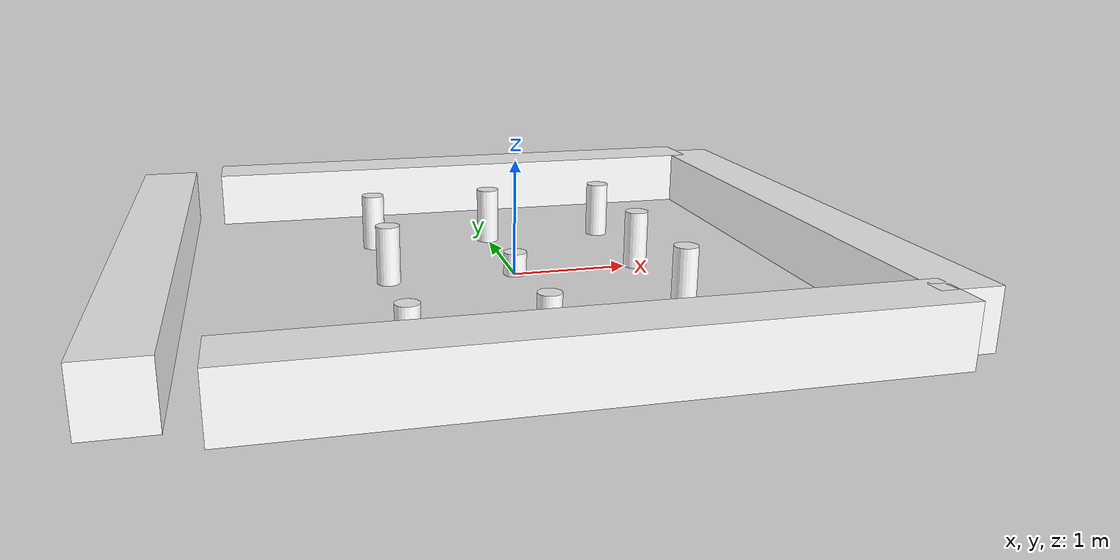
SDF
<sdf version='1.5'>
    <!-- Draw Circle -->
    <model name='ros_symbol'>
      <static>1</static>
      <link name='symbol'>
        <collision name='one_one'>
          <pose>-1.1 -1.1 0.1 0 0 0</pose>
          <geometry>
            <cylinder>
              <radius>0.1</radius>
              <length>0.2</length>
            </cylinder>
          </geometry>
          <max_contacts>10</max_contacts>
          <surface>
            <bounce/>
            <friction>
              <ode/>
            </friction>
            <contact>
              <ode/>
            </contact>
          </surface>
        </collision>

        <visual name='one_one'>
          <pose>-1.1 -1.1 0.1 0 0 0</pose>
          <geometry>
            <cylinder>
              <radius>0.1</radius>
              <length>0.2</length>
            </cylinder>
          </geometry>
          <material>
            <ambient>1 1 1 1</ambient>
            <diffuse>1 1 1 1</diffuse>
            <specular>1 1 1 1</specular>
          </material>
        </visual>

        <collision name='one_two'>
          <pose>-1.1 0 0.25 0 0 0</pose>
          <geometry>
            <cylinder>
              <radius>0.1</radius>
              <length>0.5</length>
            </cylinder>
          </geometry>
          <max_contacts>10</max_contacts>
          <surface>
            <bounce/>
            <friction>
              <ode/>
            </friction>
            <contact>
              <ode/>
            </contact>
          </surface>
        </collision>

        <visual name='one_two'>
          <pose>-1.1 0 0.25 0 0 0</pose>
          <geometry>
            <cylinder>
              <radius>0.1</radius>
              <length>0.5</length>
            </cylinder>
          </geometry>
          <material>
            <ambient>1 1 1 1</ambient>
            <diffuse>1 1 1 1</diffuse>
            <specular>1 1 1 1</specular>
          </material>
        </visual>

        <collision name='one_three'>
          <pose>-1.1 1.1 0.25 0 0 0</pose>
          <geometry>
            <cylinder>
              <radius>0.1</radius>
              <length>0.5</length>
            </cylinder>
          </geometry>
          <max_contacts>10</max_contacts>
          <surface>
            <bounce/>
            <friction>
              <ode/>
            </friction>
            <contact>
              <ode/>
            </contact>
          </surface>
        </collision>

        <visual name='one_three'>
          <pose>-1.1 1.1 0.25 0 0 0</pose>
          <geometry>
            <cylinder>
              <radius>0.1</radius>
              <length>0.5</length>
            </cylinder>
          </geometry>
          <material>
            <ambient>1 1 1 1</ambient>
            <diffuse>1 1 1 1</diffuse>
            <specular>1 1 1 1</specular>
          </material>
        </visual>

        <collision name='two_one'>
          <pose>0 -1.1 0.1 0 0 0</pose>
          <geometry>
            <cylinder>
              <radius>0.1</radius>
              <length>0.2</length>
            </cylinder>
          </geometry>
          <max_contacts>10</max_contacts>
          <surface>
            <bounce/>
            <friction>
              <ode/>
            </friction>
            <contact>
              <ode/>
            </contact>
          </surface>
        </collision>

        <visual name='two_one'>
          <pose>0 -1.1 0.1 0 0 0</pose>
          <geometry>
            <cylinder>
              <radius>0.1</radius>
              <length>0.2</length>
            </cylinder>
          </geometry>
          <material>
            <ambient>1 1 1 1</ambient>
            <diffuse>1 1 1 1</diffuse>
            <specular>1 1 1 1</specular>
          </material>
        </visual>

        <collision name='two_two'>
          <pose>0 0 0.1 0 0 0</pose>
          <geometry>
            <cylinder>
              <radius>0.1</radius>
              <length>0.2</length>
            </cylinder>
          </geometry>
          <max_contacts>10</max_contacts>
          <surface>
            <bounce/>
            <friction>
              <ode/>
            </friction>
            <contact>
              <ode/>
            </contact>
          </surface>
        </collision>

        <visual name='two_two'>
          <pose>0 0 0.1 0 0 0</pose>
          <geometry>
            <cylinder>
              <radius>0.1</radius>
              <length>0.2</length>
            </cylinder>
          </geometry>
          <material>
            <ambient>1 1 1 1</ambient>
            <diffuse>1 1 1 1</diffuse>
            <specular>1 1 1 1</specular>
          </material>
        </visual>

        <collision name='two_three'>
          <pose>0 1.1 0.25 0 0 0</pose>
          <geometry>
            <cylinder>
              <radius>0.1</radius>
              <length>0.5</length>
            </cylinder>
          </geometry>
          <max_contacts>10</max_contacts>
          <surface>
            <bounce/>
            <friction>
              <ode/>
            </friction>
            <contact>
              <ode/>
            </contact>
          </surface>
        </collision>

        <visual name='two_three'>
          <pose>0 1.1 0.25 0 0 0</pose>
          <geometry>
            <cylinder>
              <radius>0.1</radius>
              <length>0.5</length>
            </cylinder>
          </geometry>
          <material>
            <ambient>1 1 1 1</ambient>
            <diffuse>1 1 1 1</diffuse>
            <specular>1 1 1 1</specular>
          </material>
        </visual>

        <collision name='three_one'>
          <pose>1.1 -1.1 0.25 0 0 0</pose>
          <geometry>
            <cylinder>
              <radius>0.1</radius>
              <length>0.5</length>
            </cylinder>
          </geometry>
          <max_contacts>10</max_contacts>
          <surface>
            <bounce/>
            <friction>
              <ode/>
            </friction>
            <contact>
              <ode/>
            </contact>
          </surface>
        </collision>

        <visual name='three_one'>
          <pose>1.1 -1.1 0.25 0 0 0</pose>
          <geometry>
            <cylinder>
              <radius>0.1</radius>
              <length>0.5</length>
            </cylinder>
          </geometry>
          <material>
            <ambient>1 1 1 1</ambient>
            <diffuse>1 1 1 1</diffuse>
            <specular>1 1 1 1</specular>
          </material>
        </visual>

        <collision name='three_two'>
          <pose>1.1 0 0.25 0 0 0</pose>
          <geometry>
            <cylinder>
              <radius>0.1</radius>
              <length>0.5</length>
            </cylinder>
          </geometry>
          <max_contacts>10</max_contacts>
          <surface>
            <bounce/>
            <friction>
              <ode/>
            </friction>
            <contact>
              <ode/>
            </contact>
          </surface>
        </collision>

        <visual name='three_two'>
          <pose>1.1 0 0.25 0 0 0</pose>
          <geometry>
            <cylinder>
              <radius>0.1</radius>
              <length>0.5</length>
            </cylinder>
          </geometry>
          <material>
            <ambient>1 1 1 1</ambient>
            <diffuse>1 1 1 1</diffuse>
            <specular>1 1 1 1</specular>
          </material>
        </visual>

        <collision name='three_three'>
          <pose>1.1 1.1 0.25 0 0 0</pose>
          <geometry>
            <cylinder>
              <radius>0.1</radius>
              <length>0.5</length>
            </cylinder>
          </geometry>
          <max_contacts>10</max_contacts>
          <surface>
            <bounce/>
            <friction>
              <ode/>
            </friction>
            <contact>
              <ode/>
            </contact>
          </surface>
        </collision>

        <visual name='three_three'>
          <pose>1.1 1.1 0.25 0 0 0</pose>
          <geometry>
            <cylinder>
              <radius>0.1</radius>
              <length>0.5</length>
            </cylinder>
          </geometry>
          <material>
            <ambient>1 1 1 1</ambient>
            <diffuse>1 1 1 1</diffuse>
            <specular>1 1 1 1</specular>
          </material>
        </visual>

        <collision name='right_wall'>
          <pose>0 -2.5 0.25 0 0 0</pose>
          <geometry>
            <box>
              <size>5 0.5 0.5</size>
            </box>
          </geometry>
          <max_contacts>10</max_contacts>
          <surface>
            <bounce/>
            <friction>
              <ode/>
            </friction>
            <contact>
              <ode/>
            </contact>
          </surface>
        </collision>

        <visual name='right_wall'>
          <pose>0 -2.5 0.25 0 0 0</pose>
          <geometry>
            <box>
              <size>5 0.5 0.5</size>
            </box>
          </geometry>
          <material>
            <ambient>1 1 1 1</ambient>
            <diffuse>1 1 1 1</diffuse>
            <specular>1 1 1 1</specular>
          </material>
        </visual>

        <collision name='left_wall'>
          <pose>0 2.5 0.25 0 0 0</pose>
          <geometry>
            <box>
              <size>5 0.5 0.5</size>
            </box>
          </geometry>
          <max_contacts>10</max_contacts>
          <surface>
            <bounce/>
            <friction>
              <ode/>
            </friction>
            <contact>
              <ode/>
            </contact>
          </surface>
        </collision>

        <visual name='left_wall'>
          <pose>0 2.5 0.25 0 0 0</pose>
          <geometry>
            <box>
              <size>5 0.5 0.5</size>
            </box>
          </geometry>
          <material>
            <ambient>1 1 1 1</ambient>
            <diffuse>1 1 1 1</diffuse>
            <specular>1 1 1 1</specular>
          </material>
        </visual>

        <collision name='top_wall'>
          <pose>2.5 0 0.25 0 0 0</pose>
          <geometry>
            <box>
              <size>0.5 5 0.5</size>
            </box>
          </geometry>
          <max_contacts>10</max_contacts>
          <surface>
            <bounce/>
            <friction>
              <ode/>
            </friction>
            <contact>
              <ode/>
            </contact>
          </surface>
        </collision>

        <visual name='top_wall'>
          <pose>2.6 0 0.25 0 0 0</pose>
          <geometry>
            <box>
              <size>0.5 5 0.5</size>
            </box>
          </geometry>
          <material>
            <ambient>1 1 1 1</ambient>
            <diffuse>1 1 1 1</diffuse>
            <specular>1 1 1 1</specular>
          </material>
        </visual>

        <collision name='bottom_wall'>
          <pose>-3 0 0.25 0 0 0</pose>
          <geometry>
            <box>
              <size>0.5 5 0.5</size>
            </box>
          </geometry>
          <max_contacts>10</max_contacts>
          <surface>
            <bounce/>
            <friction>
              <ode/>
            </friction>
            <contact>
              <ode/>
            </contact>
          </surface>
        </collision>

        <visual name='bottom_wall'>
          <pose>-3 0 0.25 0 0 0</pose>
          <geometry>
            <box>
              <size>0.5 5 0.5</size>
            </box>
          </geometry>
          <material>
            <ambient>1 1 1 1</ambient>
            <diffuse>1 1 1 1</diffuse>
            <specular>1 1 1 1</specular>
          </material>
        </visual>
      </link>
  </model>
</sdf>
